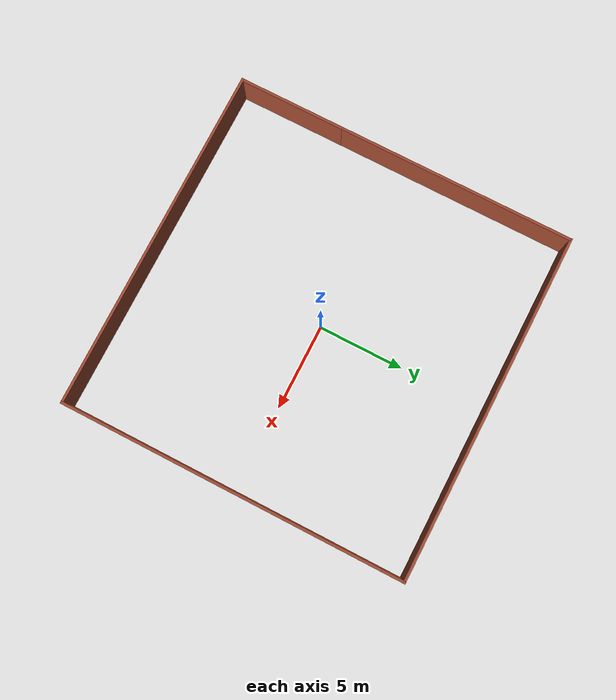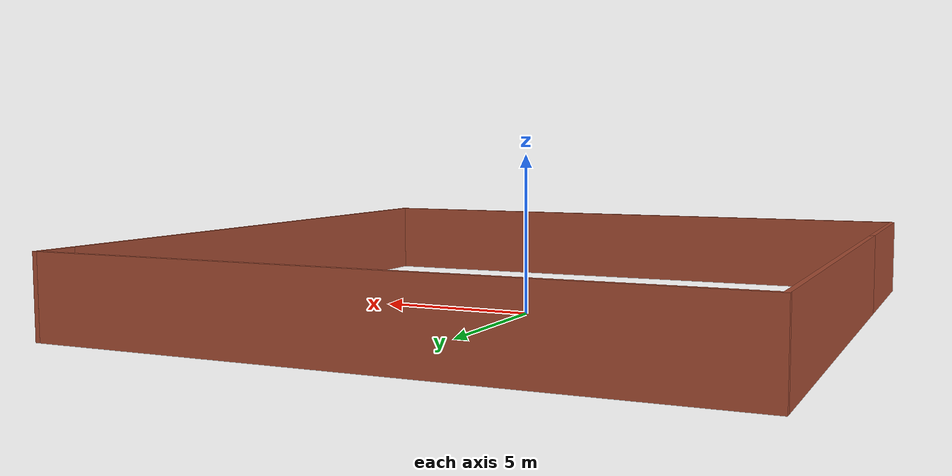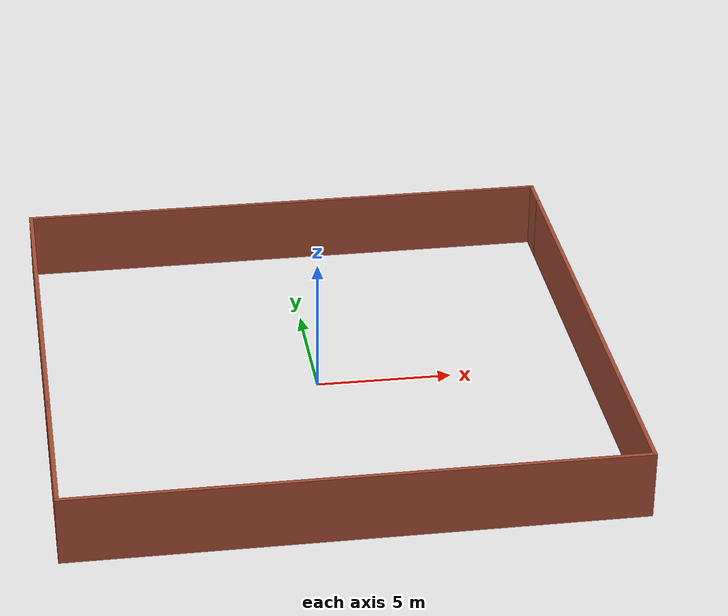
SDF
<?xml version='1.0'?>
<sdf version='1.7'>
  <model name='wall'>
    <pose>0.034627 -0.018764 0 0 -0 0</pose>
    <link name='Wall_1'>
      <collision name='Wall_1_Collision'>
        <geometry>
          <box>
            <size>6.25 0.15 2.5</size>
          </box>
        </geometry>
        <pose>0 0 1.25 0 -0 0</pose>
      </collision>
      <visual name='Wall_1_Visual'>
        <pose>0 0 1.25 0 -0 0</pose>
        <geometry>
          <box>
            <size>6.25 0.15 2.5</size>
          </box>
        </geometry>
        <material>
          <script>
            <uri>file://media/materials/scripts/gazebo.material</uri>
            <name>Gazebo/Bricks</name>
          </script>
          <ambient>1 1 1 1</ambient>
        </material>
        <meta>
          <layer>0</layer>
        </meta>
      </visual>
      <pose>-10.05 -6.925 0 0 -0 -1.5708</pose>
    </link>
    <link name='Wall_2'>
      <collision name='Wall_2_Collision'>
        <geometry>
          <box>
            <size>20.25 0.15 2.5</size>
          </box>
        </geometry>
        <pose>0 0 1.25 0 -0 0</pose>
      </collision>
      <visual name='Wall_2_Visual'>
        <pose>0 0 1.25 0 -0 0</pose>
        <geometry>
          <box>
            <size>20.25 0.15 2.5</size>
          </box>
        </geometry>
        <material>
          <script>
            <uri>file://media/materials/scripts/gazebo.material</uri>
            <name>Gazebo/Bricks</name>
          </script>
          <ambient>1 1 1 1</ambient>
        </material>
        <meta>
          <layer>0</layer>
        </meta>
      </visual>
      <pose>-0 -9.975 0 0 -0 0</pose>
    </link>
    <link name='Wall_3'>
      <collision name='Wall_3_Collision'>
        <geometry>
          <box>
            <size>18.75 0.15 2.5</size>
          </box>
        </geometry>
        <pose>0 0 1.25 0 -0 0</pose>
      </collision>
      <visual name='Wall_3_Visual'>
        <pose>0 0 1.25 0 -0 0</pose>
        <geometry>
          <box>
            <size>18.75 0.15 2.5</size>
          </box>
        </geometry>
        <material>
          <script>
            <uri>file://media/materials/scripts/gazebo.material</uri>
            <name>Gazebo/Bricks</name>
          </script>
          <ambient>1 1 1 1</ambient>
        </material>
        <meta>
          <layer>0</layer>
        </meta>
      </visual>
      <pose>10.05 -0.675 0 0 -0 1.5708</pose>
    </link>
    <link name='Wall_4'>
      <collision name='Wall_4_Collision'>
        <geometry>
          <box>
            <size>1.5 0.15 2.5</size>
          </box>
        </geometry>
        <pose>0 0 1.25 0 -0 0</pose>
      </collision>
      <visual name='Wall_4_Visual'>
        <pose>0 0 1.25 0 -0 0</pose>
        <geometry>
          <box>
            <size>1.5 0.15 2.5</size>
          </box>
        </geometry>
        <material>
          <script>
            <uri>file://media/materials/scripts/gazebo.material</uri>
            <name>Gazebo/Bricks</name>
          </script>
          <ambient>1 1 1 1</ambient>
        </material>
        <meta>
          <layer>0</layer>
        </meta>
      </visual>
      <pose>10.05 9.3 0 0 -0 1.5708</pose>
    </link>
    <link name='Wall_5'>
      <collision name='Wall_5_Collision'>
        <geometry>
          <box>
            <size>20.25 0.15 2.5</size>
          </box>
        </geometry>
        <pose>0 0 1.25 0 -0 0</pose>
      </collision>
      <visual name='Wall_5_Visual'>
        <pose>0 0 1.25 0 -0 0</pose>
        <geometry>
          <box>
            <size>20.25 0.15 2.5</size>
          </box>
        </geometry>
        <material>
          <script>
            <uri>file://media/materials/scripts/gazebo.material</uri>
            <name>Gazebo/Bricks</name>
          </script>
          <ambient>1 1 1 1</ambient>
        </material>
        <meta>
          <layer>0</layer>
        </meta>
      </visual>
      <pose>-0 9.975 0 0 -0 3.14159</pose>
    </link>
    <link name='Wall_6'>
      <collision name='Wall_6_Collision'>
        <geometry>
          <box>
            <size>14.25 0.15 2.5</size>
          </box>
        </geometry>
        <pose>0 0 1.25 0 -0 0</pose>
      </collision>
      <visual name='Wall_6_Visual'>
        <pose>0 0 1.25 0 -0 0</pose>
        <geometry>
          <box>
            <size>14.25 0.15 2.5</size>
          </box>
        </geometry>
        <material>
          <script>
            <uri>file://media/materials/scripts/gazebo.material</uri>
            <name>Gazebo/Bricks</name>
          </script>
          <ambient>1 1 1 1</ambient>
        </material>
        <meta>
          <layer>0</layer>
        </meta>
      </visual>
      <pose>-10.05 2.925 0 0 -0 -1.5708</pose>
    </link>
    <static>1</static>
  </model>
</sdf>
